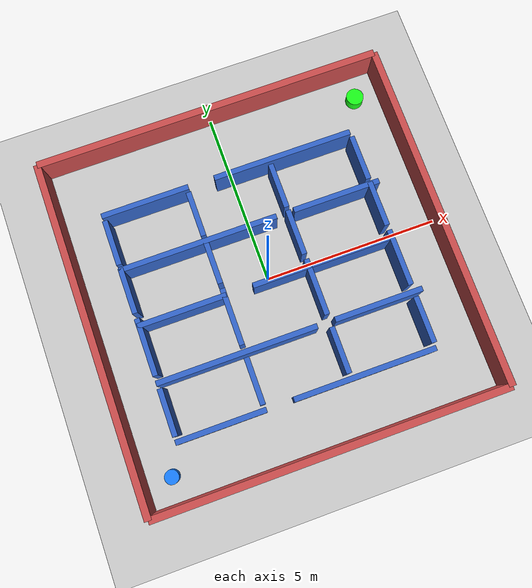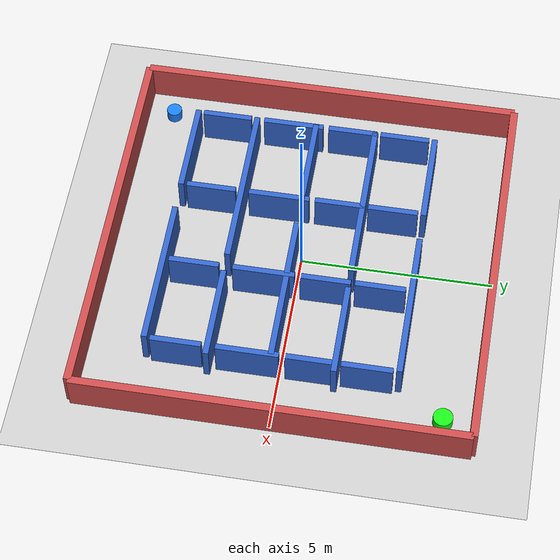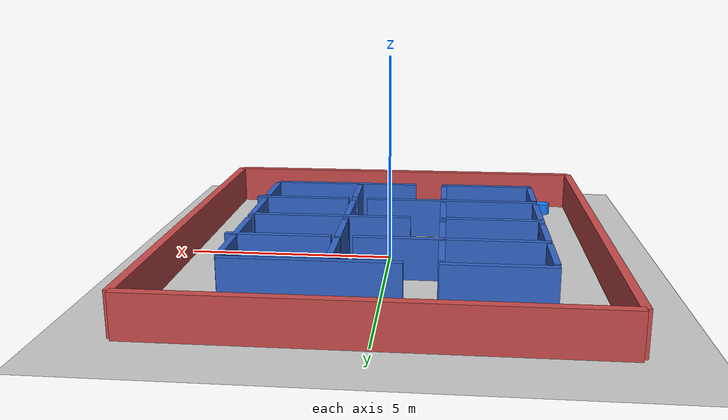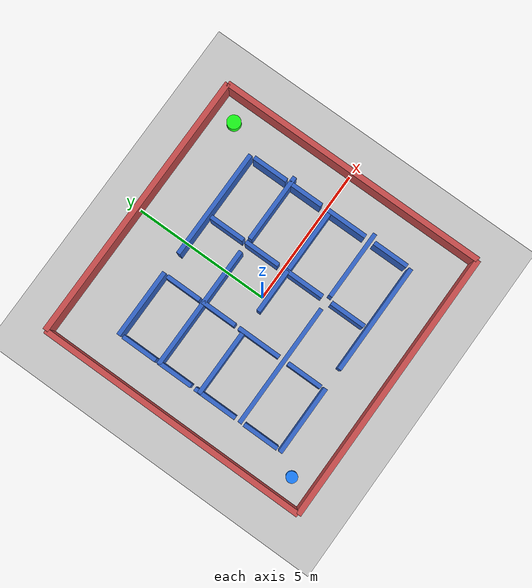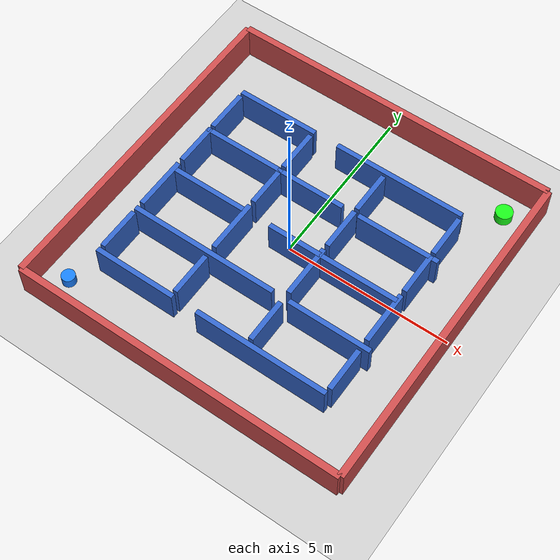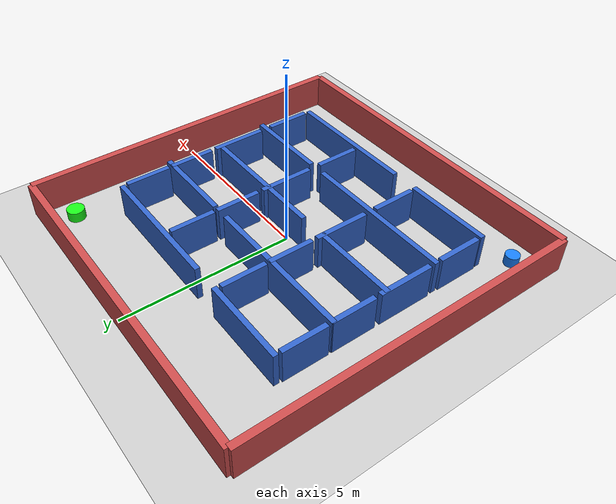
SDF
<?xml version="1.0"?>
<sdf version="1.6">
  <world name="maze_world">
    <!-- Physics Configuration -->
    <physics type="ode">
      <real_time_update_rate>1000.0</real_time_update_rate>
      <max_step_size>0.001</max_step_size>
      <real_time_factor>1</real_time_factor>
      <ode>
        <solver>
          <type>quick</type>
          <iters>150</iters>
          <precon_iters>0</precon_iters>
          <sor>1.400000</sor>
          <use_dynamic_moi_rescaling>1</use_dynamic_moi_rescaling>
        </solver>
        <constraints>
          <cfm>0.00001</cfm>
          <erp>0.2</erp>
          <contact_max_correcting_vel>2000.000000</contact_max_correcting_vel>
          <contact_surface_layer>0.01000</contact_surface_layer>
        </constraints>
      </ode>
    </physics>

    <!-- Gazebo Plugins -->
    <plugin
      filename="gz-sim-physics-system"
      name="gz::sim::systems::Physics">
    </plugin>
    <plugin
      filename="gz-sim-user-commands-system"
      name="gz::sim::systems::UserCommands">
    </plugin>
    <plugin
      filename="gz-sim-scene-broadcaster-system"
      name="gz::sim::systems::SceneBroadcaster">
    </plugin>
    <plugin
      filename="gz-sim-sensors-system"
      name="gz::sim::systems::Sensors">
      <render_engine>ogre2</render_engine>
    </plugin>
    <plugin
      filename="gz-sim-imu-system"
      name="gz::sim::systems::Imu">
    </plugin>

    <!-- Scene Settings -->
    <scene>
      <ambient>0.4 0.4 0.4 1</ambient>
      <background>0.7 0.7 0.7 1</background>
      <shadows>true</shadows>
    </scene>

    <!-- GUI Camera - Top-down view for maze -->
    <gui fullscreen='0'>
      <camera name='user_camera'>
        <pose>0 0 12.0 0 1.5708 0</pose>
        <view_controller>orbit</view_controller>
        <projection_type>perspective</projection_type>
      </camera>
    </gui>

    <!-- Ground Plane -->
    <include>
      <uri>https://fuel.gazebosim.org/1.0/OpenRobotics/models/Ground Plane</uri>
    </include>

    <!-- Sun (Lighting) -->
    <include>
      <uri>https://fuel.gazebosim.org/1.0/OpenRobotics/models/Sun</uri>
    </include>

    <!-- Wall 1 - North -->
    <model name="wall_north">
      <static>true</static>
      <pose>0 5 0.5 0 0 0</pose>
      <link name="link">
        <collision name="collision">
          <geometry>
            <box>
              <size>10 0.2 1</size>
            </box>
          </geometry>
        </collision>
        <visual name="visual">
          <geometry>
            <box>
              <size>10 0.2 1</size>
            </box>
          </geometry>
          <material>
            <ambient>0.8 0.3 0.3 1</ambient>
            <diffuse>0.8 0.3 0.3 1</diffuse>
            <specular>0.1 0.1 0.1 1</specular>
          </material>
        </visual>
      </link>
    </model>

    <!-- Wall 2 - South -->
    <model name="wall_south">
      <static>true</static>
      <pose>0 -5 0.5 0 0 0</pose>
      <link name="link">
        <collision name="collision">
          <geometry>
            <box>
              <size>10 0.2 1</size>
            </box>
          </geometry>
        </collision>
        <visual name="visual">
          <geometry>
            <box>
              <size>10 0.2 1</size>
            </box>
          </geometry>
          <material>
            <ambient>0.8 0.3 0.3 1</ambient>
            <diffuse>0.8 0.3 0.3 1</diffuse>
            <specular>0.1 0.1 0.1 1</specular>
          </material>
        </visual>
      </link>
    </model>

    <!-- Wall 3 - East -->
    <model name="wall_east">
      <static>true</static>
      <pose>5 0 0.5 0 0 1.5708</pose>
      <link name="link">
        <collision name="collision">
          <geometry>
            <box>
              <size>10 0.2 1</size>
            </box>
          </geometry>
        </collision>
        <visual name="visual">
          <geometry>
            <box>
              <size>10 0.2 1</size>
            </box>
          </geometry>
          <material>
            <ambient>0.8 0.3 0.3 1</ambient>
            <diffuse>0.8 0.3 0.3 1</diffuse>
            <specular>0.1 0.1 0.1 1</specular>
          </material>
        </visual>
      </link>
    </model>

    <!-- Wall 4 - West -->
    <model name="wall_west">
      <static>true</static>
      <pose>-5 0 0.5 0 0 1.5708</pose>
      <link name="link">
        <collision name="collision">
          <geometry>
            <box>
              <size>10 0.2 1</size>
            </box>
          </geometry>
        </collision>
        <visual name="visual">
          <geometry>
            <box>
              <size>10 0.2 1</size>
            </box>
          </geometry>
          <material>
            <ambient>0.8 0.3 0.3 1</ambient>
            <diffuse>0.8 0.3 0.3 1</diffuse>
            <specular>0.1 0.1 0.1 1</specular>
          </material>
        </visual>
      </link>
    </model>

    <!-- CLASSIC ENCLOSED MAZE FOR RIGHT-HAND WALL FOLLOWING -->
    <!-- All walls are 0.15m thick and 1.0m high -->
    <!-- Corridors are 1.2m wide for comfortable TurtleBot3 navigation -->
    <!-- START: Bottom-left (-4, -4) | FINISH: Top-right (4, 4) -->

    <!-- Row 1 - Bottom horizontal walls -->
    <model name="maze_wall_h1">
      <static>true</static>
      <pose>-2.5 -3.4 0.5 0 0 0</pose>
      <link name="link">
        <collision name="collision">
          <geometry>
            <box>
              <size>2.5 0.15 1</size>
            </box>
          </geometry>
        </collision>
        <visual name="visual">
          <geometry>
            <box>
              <size>2.5 0.15 1</size>
            </box>
          </geometry>
          <material>
            <ambient>0.2 0.4 0.8 1</ambient>
            <diffuse>0.2 0.4 0.8 1</diffuse>
            <specular>0.3 0.3 0.3 1</specular>
          </material>
        </visual>
      </link>
    </model>

    <model name="maze_wall_h2">
      <static>true</static>
      <pose>1.5 -3.4 0.5 0 0 0</pose>
      <link name="link">
        <collision name="collision">
          <geometry>
            <box>
              <size>4.0 0.15 1</size>
            </box>
          </geometry>
        </collision>
        <visual name="visual">
          <geometry>
            <box>
              <size>4.0 0.15 1</size>
            </box>
          </geometry>
          <material>
            <ambient>0.2 0.4 0.8 1</ambient>
            <diffuse>0.2 0.4 0.8 1</diffuse>
            <specular>0.3 0.3 0.3 1</specular>
          </material>
        </visual>
      </link>
    </model>

    <!-- Row 2 - Lower-mid horizontal walls -->
    <model name="maze_wall_h3">
      <static>true</static>
      <pose>-1.5 -1.8 0.5 0 0 0</pose>
      <link name="link">
        <collision name="collision">
          <geometry>
            <box>
              <size>4.5 0.15 1</size>
            </box>
          </geometry>
        </collision>
        <visual name="visual">
          <geometry>
            <box>
              <size>4.5 0.15 1</size>
            </box>
          </geometry>
          <material>
            <ambient>0.2 0.4 0.8 1</ambient>
            <diffuse>0.2 0.4 0.8 1</diffuse>
            <specular>0.3 0.3 0.3 1</specular>
          </material>
        </visual>
      </link>
    </model>

    <model name="maze_wall_h4">
      <static>true</static>
      <pose>2.5 -1.8 0.5 0 0 0</pose>
      <link name="link">
        <collision name="collision">
          <geometry>
            <box>
              <size>2.5 0.15 1</size>
            </box>
          </geometry>
        </collision>
        <visual name="visual">
          <geometry>
            <box>
              <size>2.5 0.15 1</size>
            </box>
          </geometry>
          <material>
            <ambient>0.2 0.4 0.8 1</ambient>
            <diffuse>0.2 0.4 0.8 1</diffuse>
            <specular>0.3 0.3 0.3 1</specular>
          </material>
        </visual>
      </link>
    </model>

    <!-- Row 3 - Middle horizontal walls -->
    <model name="maze_wall_h5">
      <static>true</static>
      <pose>-2.5 -0.2 0.5 0 0 0</pose>
      <link name="link">
        <collision name="collision">
          <geometry>
            <box>
              <size>2.5 0.15 1</size>
            </box>
          </geometry>
        </collision>
        <visual name="visual">
          <geometry>
            <box>
              <size>2.5 0.15 1</size>
            </box>
          </geometry>
          <material>
            <ambient>0.2 0.4 0.8 1</ambient>
            <diffuse>0.2 0.4 0.8 1</diffuse>
            <specular>0.3 0.3 0.3 1</specular>
          </material>
        </visual>
      </link>
    </model>

    <model name="maze_wall_h6">
      <static>true</static>
      <pose>1.5 -0.2 0.5 0 0 0</pose>
      <link name="link">
        <collision name="collision">
          <geometry>
            <box>
              <size>4.0 0.15 1</size>
            </box>
          </geometry>
        </collision>
        <visual name="visual">
          <geometry>
            <box>
              <size>4.0 0.15 1</size>
            </box>
          </geometry>
          <material>
            <ambient>0.2 0.4 0.8 1</ambient>
            <diffuse>0.2 0.4 0.8 1</diffuse>
            <specular>0.3 0.3 0.3 1</specular>
          </material>
        </visual>
      </link>
    </model>

    <!-- Row 4 - Upper-mid horizontal walls -->
    <model name="maze_wall_h7">
      <static>true</static>
      <pose>-1.5 1.4 0.5 0 0 0</pose>
      <link name="link">
        <collision name="collision">
          <geometry>
            <box>
              <size>4.5 0.15 1</size>
            </box>
          </geometry>
        </collision>
        <visual name="visual">
          <geometry>
            <box>
              <size>4.5 0.15 1</size>
            </box>
          </geometry>
          <material>
            <ambient>0.2 0.4 0.8 1</ambient>
            <diffuse>0.2 0.4 0.8 1</diffuse>
            <specular>0.3 0.3 0.3 1</specular>
          </material>
        </visual>
      </link>
    </model>

    <model name="maze_wall_h8">
      <static>true</static>
      <pose>2.5 1.4 0.5 0 0 0</pose>
      <link name="link">
        <collision name="collision">
          <geometry>
            <box>
              <size>2.5 0.15 1</size>
            </box>
          </geometry>
        </collision>
        <visual name="visual">
          <geometry>
            <box>
              <size>2.5 0.15 1</size>
            </box>
          </geometry>
          <material>
            <ambient>0.2 0.4 0.8 1</ambient>
            <diffuse>0.2 0.4 0.8 1</diffuse>
            <specular>0.3 0.3 0.3 1</specular>
          </material>
        </visual>
      </link>
    </model>

    <!-- Row 5 - Top horizontal walls -->
    <model name="maze_wall_h9">
      <static>true</static>
      <pose>-2.5 3.0 0.5 0 0 0</pose>
      <link name="link">
        <collision name="collision">
          <geometry>
            <box>
              <size>2.5 0.15 1</size>
            </box>
          </geometry>
        </collision>
        <visual name="visual">
          <geometry>
            <box>
              <size>2.5 0.15 1</size>
            </box>
          </geometry>
          <material>
            <ambient>0.2 0.4 0.8 1</ambient>
            <diffuse>0.2 0.4 0.8 1</diffuse>
            <specular>0.3 0.3 0.3 1</specular>
          </material>
        </visual>
      </link>
    </model>

    <model name="maze_wall_h10">
      <static>true</static>
      <pose>1.5 3.0 0.5 0 0 0</pose>
      <link name="link">
        <collision name="collision">
          <geometry>
            <box>
              <size>4.0 0.15 1</size>
            </box>
          </geometry>
        </collision>
        <visual name="visual">
          <geometry>
            <box>
              <size>4.0 0.15 1</size>
            </box>
          </geometry>
          <material>
            <ambient>0.2 0.4 0.8 1</ambient>
            <diffuse>0.2 0.4 0.8 1</diffuse>
            <specular>0.3 0.3 0.3 1</specular>
          </material>
        </visual>
      </link>
    </model>

    <!-- Column 1 - Left vertical walls -->
    <model name="maze_wall_v1">
      <static>true</static>
      <pose>-3.7 -2.6 0.5 0 0 0</pose>
      <link name="link">
        <collision name="collision">
          <geometry>
            <box>
              <size>0.15 1.3 1</size>
            </box>
          </geometry>
        </collision>
        <visual name="visual">
          <geometry>
            <box>
              <size>0.15 1.3 1</size>
            </box>
          </geometry>
          <material>
            <ambient>0.2 0.4 0.8 1</ambient>
            <diffuse>0.2 0.4 0.8 1</diffuse>
            <specular>0.3 0.3 0.3 1</specular>
          </material>
        </visual>
      </link>
    </model>

    <model name="maze_wall_v2">
      <static>true</static>
      <pose>-3.7 -0.8 0.5 0 0 0</pose>
      <link name="link">
        <collision name="collision">
          <geometry>
            <box>
              <size>0.15 1.6 1</size>
            </box>
          </geometry>
        </collision>
        <visual name="visual">
          <geometry>
            <box>
              <size>0.15 1.6 1</size>
            </box>
          </geometry>
          <material>
            <ambient>0.2 0.4 0.8 1</ambient>
            <diffuse>0.2 0.4 0.8 1</diffuse>
            <specular>0.3 0.3 0.3 1</specular>
          </material>
        </visual>
      </link>
    </model>

    <model name="maze_wall_v3">
      <static>true</static>
      <pose>-3.7 0.8 0.5 0 0 0</pose>
      <link name="link">
        <collision name="collision">
          <geometry>
            <box>
              <size>0.15 1.3 1</size>
            </box>
          </geometry>
        </collision>
        <visual name="visual">
          <geometry>
            <box>
              <size>0.15 1.3 1</size>
            </box>
          </geometry>
          <material>
            <ambient>0.2 0.4 0.8 1</ambient>
            <diffuse>0.2 0.4 0.8 1</diffuse>
            <specular>0.3 0.3 0.3 1</specular>
          </material>
        </visual>
      </link>
    </model>

    <model name="maze_wall_v4">
      <static>true</static>
      <pose>-3.7 2.2 0.5 0 0 0</pose>
      <link name="link">
        <collision name="collision">
          <geometry>
            <box>
              <size>0.15 1.3 1</size>
            </box>
          </geometry>
        </collision>
        <visual name="visual">
          <geometry>
            <box>
              <size>0.15 1.3 1</size>
            </box>
          </geometry>
          <material>
            <ambient>0.2 0.4 0.8 1</ambient>
            <diffuse>0.2 0.4 0.8 1</diffuse>
            <specular>0.3 0.3 0.3 1</specular>
          </material>
        </visual>
      </link>
    </model>

    <!-- Column 2 - Mid-left vertical walls -->
    <model name="maze_wall_v5">
      <static>true</static>
      <pose>-1.3 -2.6 0.5 0 0 0</pose>
      <link name="link">
        <collision name="collision">
          <geometry>
            <box>
              <size>0.15 1.3 1</size>
            </box>
          </geometry>
        </collision>
        <visual name="visual">
          <geometry>
            <box>
              <size>0.15 1.3 1</size>
            </box>
          </geometry>
          <material>
            <ambient>0.2 0.4 0.8 1</ambient>
            <diffuse>0.2 0.4 0.8 1</diffuse>
            <specular>0.3 0.3 0.3 1</specular>
          </material>
        </visual>
      </link>
    </model>

    <model name="maze_wall_v6">
      <static>true</static>
      <pose>-1.3 -0.8 0.5 0 0 0</pose>
      <link name="link">
        <collision name="collision">
          <geometry>
            <box>
              <size>0.15 1.6 1</size>
            </box>
          </geometry>
        </collision>
        <visual name="visual">
          <geometry>
            <box>
              <size>0.15 1.6 1</size>
            </box>
          </geometry>
          <material>
            <ambient>0.2 0.4 0.8 1</ambient>
            <diffuse>0.2 0.4 0.8 1</diffuse>
            <specular>0.3 0.3 0.3 1</specular>
          </material>
        </visual>
      </link>
    </model>

    <model name="maze_wall_v7">
      <static>true</static>
      <pose>-1.3 0.8 0.5 0 0 0</pose>
      <link name="link">
        <collision name="collision">
          <geometry>
            <box>
              <size>0.15 1.3 1</size>
            </box>
          </geometry>
        </collision>
        <visual name="visual">
          <geometry>
            <box>
              <size>0.15 1.3 1</size>
            </box>
          </geometry>
          <material>
            <ambient>0.2 0.4 0.8 1</ambient>
            <diffuse>0.2 0.4 0.8 1</diffuse>
            <specular>0.3 0.3 0.3 1</specular>
          </material>
        </visual>
      </link>
    </model>

    <model name="maze_wall_v8">
      <static>true</static>
      <pose>-1.3 2.2 0.5 0 0 0</pose>
      <link name="link">
        <collision name="collision">
          <geometry>
            <box>
              <size>0.15 1.3 1</size>
            </box>
          </geometry>
        </collision>
        <visual name="visual">
          <geometry>
            <box>
              <size>0.15 1.3 1</size>
            </box>
          </geometry>
          <material>
            <ambient>0.2 0.4 0.8 1</ambient>
            <diffuse>0.2 0.4 0.8 1</diffuse>
            <specular>0.3 0.3 0.3 1</specular>
          </material>
        </visual>
      </link>
    </model>

    <!-- Column 3 - Center vertical walls -->
    <model name="maze_wall_v9">
      <static>true</static>
      <pose>1.1 -2.6 0.5 0 0 0</pose>
      <link name="link">
        <collision name="collision">
          <geometry>
            <box>
              <size>0.15 1.3 1</size>
            </box>
          </geometry>
        </collision>
        <visual name="visual">
          <geometry>
            <box>
              <size>0.15 1.3 1</size>
            </box>
          </geometry>
          <material>
            <ambient>0.2 0.4 0.8 1</ambient>
            <diffuse>0.2 0.4 0.8 1</diffuse>
            <specular>0.3 0.3 0.3 1</specular>
          </material>
        </visual>
      </link>
    </model>

    <model name="maze_wall_v10">
      <static>true</static>
      <pose>1.1 -0.8 0.5 0 0 0</pose>
      <link name="link">
        <collision name="collision">
          <geometry>
            <box>
              <size>0.15 1.6 1</size>
            </box>
          </geometry>
        </collision>
        <visual name="visual">
          <geometry>
            <box>
              <size>0.15 1.6 1</size>
            </box>
          </geometry>
          <material>
            <ambient>0.2 0.4 0.8 1</ambient>
            <diffuse>0.2 0.4 0.8 1</diffuse>
            <specular>0.3 0.3 0.3 1</specular>
          </material>
        </visual>
      </link>
    </model>

    <model name="maze_wall_v11">
      <static>true</static>
      <pose>1.1 0.8 0.5 0 0 0</pose>
      <link name="link">
        <collision name="collision">
          <geometry>
            <box>
              <size>0.15 1.3 1</size>
            </box>
          </geometry>
        </collision>
        <visual name="visual">
          <geometry>
            <box>
              <size>0.15 1.3 1</size>
            </box>
          </geometry>
          <material>
            <ambient>0.2 0.4 0.8 1</ambient>
            <diffuse>0.2 0.4 0.8 1</diffuse>
            <specular>0.3 0.3 0.3 1</specular>
          </material>
        </visual>
      </link>
    </model>

    <model name="maze_wall_v12">
      <static>true</static>
      <pose>1.1 2.2 0.5 0 0 0</pose>
      <link name="link">
        <collision name="collision">
          <geometry>
            <box>
              <size>0.15 1.3 1</size>
            </box>
          </geometry>
        </collision>
        <visual name="visual">
          <geometry>
            <box>
              <size>0.15 1.3 1</size>
            </box>
          </geometry>
          <material>
            <ambient>0.2 0.4 0.8 1</ambient>
            <diffuse>0.2 0.4 0.8 1</diffuse>
            <specular>0.3 0.3 0.3 1</specular>
          </material>
        </visual>
      </link>
    </model>

    <!-- Column 4 - Right vertical walls -->
    <model name="maze_wall_v13">
      <static>true</static>
      <pose>3.5 -2.6 0.5 0 0 0</pose>
      <link name="link">
        <collision name="collision">
          <geometry>
            <box>
              <size>0.15 1.3 1</size>
            </box>
          </geometry>
        </collision>
        <visual name="visual">
          <geometry>
            <box>
              <size>0.15 1.3 1</size>
            </box>
          </geometry>
          <material>
            <ambient>0.2 0.4 0.8 1</ambient>
            <diffuse>0.2 0.4 0.8 1</diffuse>
            <specular>0.3 0.3 0.3 1</specular>
          </material>
        </visual>
      </link>
    </model>

    <model name="maze_wall_v14">
      <static>true</static>
      <pose>3.5 -0.8 0.5 0 0 0</pose>
      <link name="link">
        <collision name="collision">
          <geometry>
            <box>
              <size>0.15 1.6 1</size>
            </box>
          </geometry>
        </collision>
        <visual name="visual">
          <geometry>
            <box>
              <size>0.15 1.6 1</size>
            </box>
          </geometry>
          <material>
            <ambient>0.2 0.4 0.8 1</ambient>
            <diffuse>0.2 0.4 0.8 1</diffuse>
            <specular>0.3 0.3 0.3 1</specular>
          </material>
        </visual>
      </link>
    </model>

    <model name="maze_wall_v15">
      <static>true</static>
      <pose>3.5 0.8 0.5 0 0 0</pose>
      <link name="link">
        <collision name="collision">
          <geometry>
            <box>
              <size>0.15 1.3 1</size>
            </box>
          </geometry>
        </collision>
        <visual name="visual">
          <geometry>
            <box>
              <size>0.15 1.3 1</size>
            </box>
          </geometry>
          <material>
            <ambient>0.2 0.4 0.8 1</ambient>
            <diffuse>0.2 0.4 0.8 1</diffuse>
            <specular>0.3 0.3 0.3 1</specular>
          </material>
        </visual>
      </link>
    </model>

    <model name="maze_wall_v16">
      <static>true</static>
      <pose>3.5 2.2 0.5 0 0 0</pose>
      <link name="link">
        <collision name="collision">
          <geometry>
            <box>
              <size>0.15 1.3 1</size>
            </box>
          </geometry>
        </collision>
        <visual name="visual">
          <geometry>
            <box>
              <size>0.15 1.3 1</size>
            </box>
          </geometry>
          <material>
            <ambient>0.2 0.4 0.8 1</ambient>
            <diffuse>0.2 0.4 0.8 1</diffuse>
            <specular>0.3 0.3 0.3 1</specular>
          </material>
        </visual>
      </link>
    </model>

    <!-- Goal marker (Green cylinder at finish) -->
    <model name="goal_marker">
      <static>true</static>
      <pose>4.2 4.2 0.15 0 0 0</pose>
      <link name="link">
        <collision name="collision">
          <geometry>
            <cylinder>
              <radius>0.25</radius>
              <length>0.3</length>
            </cylinder>
          </geometry>
        </collision>
        <visual name="visual">
          <geometry>
            <cylinder>
              <radius>0.25</radius>
              <length>0.3</length>
            </cylinder>
          </geometry>
          <material>
            <ambient>0.1 1.0 0.1 1</ambient>
            <diffuse>0.1 1.0 0.1 1</diffuse>
            <specular>0.8 0.8 0.8 1</specular>
            <emissive>0.0 0.3 0.0 1</emissive>
          </material>
        </visual>
      </link>
    </model>

    <!-- Start marker (Blue cylinder at start) -->
    <model name="start_marker">
      <static>true</static>
      <pose>-4.2 -4.2 0.15 0 0 0</pose>
      <link name="link">
        <collision name="collision">
          <geometry>
            <cylinder>
              <radius>0.20</radius>
              <length>0.3</length>
            </cylinder>
          </geometry>
        </collision>
        <visual name="visual">
          <geometry>
            <cylinder>
              <radius>0.20</radius>
              <length>0.3</length>
            </cylinder>
          </geometry>
          <material>
            <ambient>0.1 0.5 1.0 1</ambient>
            <diffuse>0.1 0.5 1.0 1</diffuse>
            <specular>0.8 0.8 0.8 1</specular>
            <emissive>0.0 0.1 0.3 1</emissive>
          </material>
        </visual>
      </link>
    </model>

  </world>
</sdf>
